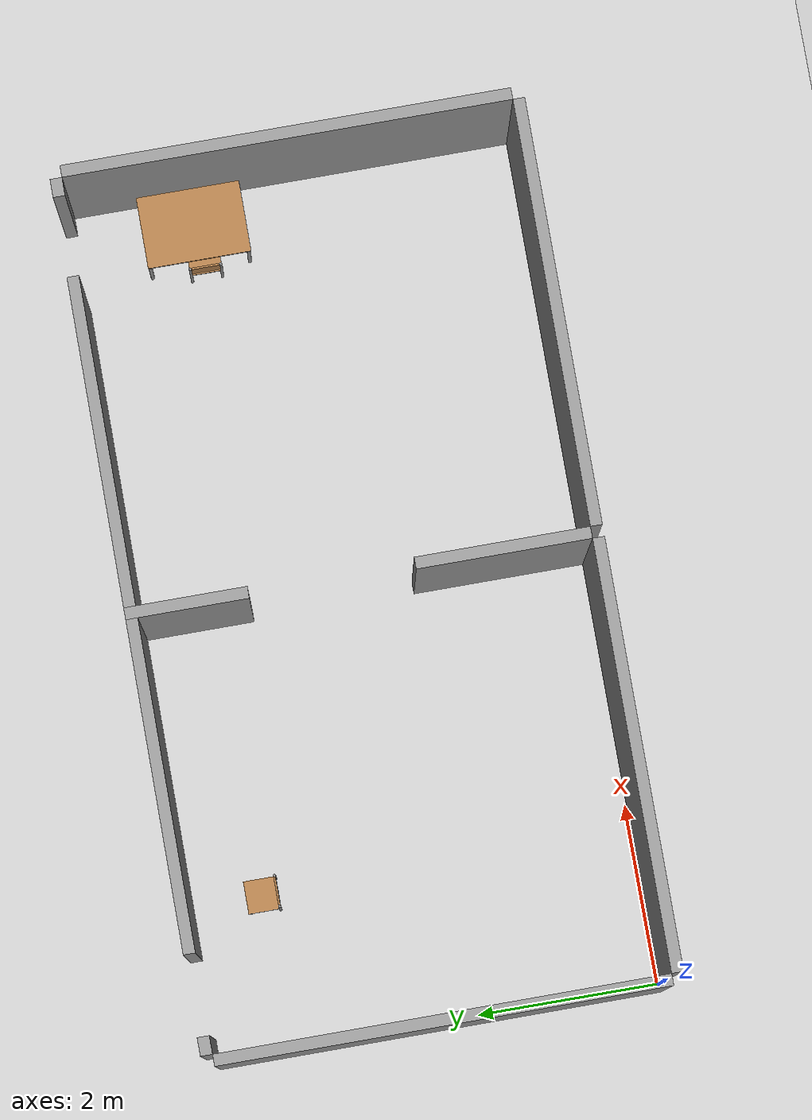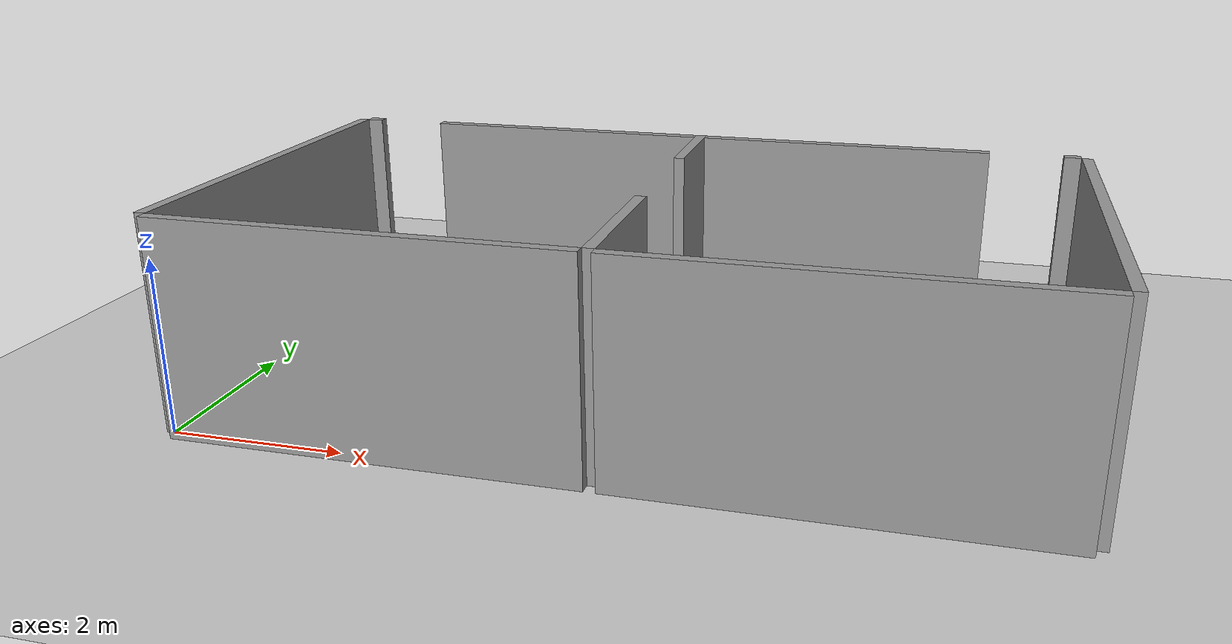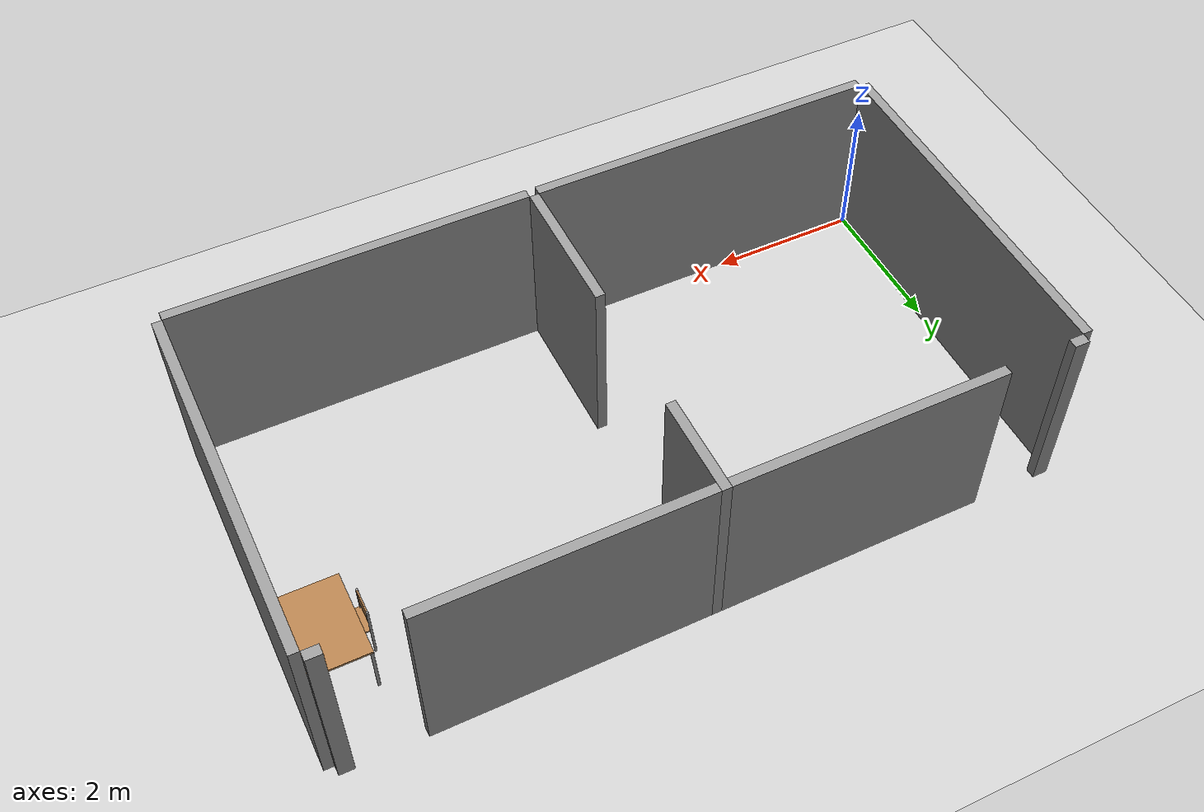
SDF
<sdf version="1.7">
 <world name="default">
  <model name="ground_plane">
   <static>1</static>
   <link name="link">
    <collision name="collision">
     <geometry><plane><normal>0 0 1</normal><size>100 100</size></plane></geometry>
     <surface>
      <contact><collide_bitmask>65535</collide_bitmask></contact>
      <friction><ode><mu>100</mu><mu2>50</mu2></ode></friction>
     </surface>
    </collision>
    <visual name="visual">
     <cast_shadows>0</cast_shadows>
     <geometry><plane><normal>0 0 1</normal><size>100 100</size></plane></geometry>
     <material>
      <script><uri>file://media/materials/scripts/gazebo.material</uri><name>Gazebo/Grey</name></script>
     </material>
    </visual>
   </link>
  </model>
  <model name="wall">
   <link name="Wall_0">
    <pose>-2.51458 2.40421 0 0 0 -1.5708</pose>
    <visual name="Wall_0_Visual">
     <pose>0 0 1.25 0 -0 0</pose>
     <geometry><box><size>4.68 0.13 2.5</size></box></geometry>
     <material>
      <script><uri>file://media/materials/scripts/gazebo.material</uri><name>Gazebo/Grey</name></script>
      <ambient>1 1 1 1</ambient>
      <shader type="pixel"/>
     </material>
     <meta><layer>0</layer></meta>
    </visual>
    <collision name="Wall_0_Collision">
     <pose>0 0 1.25 0 -0 0</pose>
     <geometry><box><size>4.68 0.13 2.5</size></box></geometry>
     <surface>
      <friction>
       <ode><mu>1</mu><mu2>1</mu2><fdir1>0 0 0</fdir1><slip1>0</slip1><slip2>0</slip2></ode>
       <torsional>
        <coefficient>1</coefficient>
        <patch_radius>0</patch_radius>
        <surface_radius>0</surface_radius>
        <use_patch_radius>1</use_patch_radius>
        <ode><slip>0</slip></ode>
       </torsional>
      </friction>
      <bounce><restitution_coefficient>0</restitution_coefficient><threshold>1e+06</threshold></bounce>
      <contact>
       <collide_without_contact>0</collide_without_contact>
       <collide_without_contact_bitmask>1</collide_without_contact_bitmask>
       <collide_bitmask>1</collide_bitmask>
       <ode>
        <soft_cfm>0</soft_cfm>
        <soft_erp>0.2</soft_erp>
        <kp>1e+13</kp>
        <kd>1</kd>
        <max_vel>0.01</max_vel>
        <min_depth>0</min_depth>
       </ode>
       <bullet>
        <split_impulse>1</split_impulse>
        <split_impulse_penetration_threshold>-0.01</split_impulse_penetration_threshold>
        <soft_cfm>0</soft_cfm>
        <soft_erp>0.2</soft_erp>
        <kp>1e+13</kp>
        <kd>1</kd>
       </bullet>
      </contact>
     </surface>
    </collision>
   </link>
   <link name="Wall_11">
    <pose>-0.000844 -4.80859 0 0 -0 0</pose>
    <visual name="Wall_11_Visual">
     <pose>0 0 1.25 0 -0 0</pose>
     <geometry><box><size>4.9 0.13 2.5</size></box></geometry>
     <material>
      <script><uri>file://media/materials/scripts/gazebo.material</uri><name>Gazebo/Grey</name></script>
      <ambient>1 1 1 1</ambient>
      <shader type="pixel"/>
     </material>
     <meta><layer>0</layer></meta>
    </visual>
    <collision name="Wall_11_Collision">
     <pose>0 0 1.25 0 -0 0</pose>
     <geometry><box><size>4.9 0.13 2.5</size></box></geometry>
     <surface>
      <friction>
       <ode><mu>1</mu><mu2>1</mu2><fdir1>0 0 0</fdir1><slip1>0</slip1><slip2>0</slip2></ode>
       <torsional>
        <coefficient>1</coefficient>
        <patch_radius>0</patch_radius>
        <surface_radius>0</surface_radius>
        <use_patch_radius>1</use_patch_radius>
        <ode><slip>0</slip></ode>
       </torsional>
      </friction>
      <bounce><restitution_coefficient>0</restitution_coefficient><threshold>1e+06</threshold></bounce>
      <contact>
       <collide_without_contact>0</collide_without_contact>
       <collide_without_contact_bitmask>1</collide_without_contact_bitmask>
       <collide_bitmask>1</collide_bitmask>
       <ode>
        <soft_cfm>0</soft_cfm>
        <soft_erp>0.2</soft_erp>
        <kp>1e+13</kp>
        <kd>1</kd>
        <max_vel>0.01</max_vel>
        <min_depth>0</min_depth>
       </ode>
       <bullet>
        <split_impulse>1</split_impulse>
        <split_impulse_penetration_threshold>-0.01</split_impulse_penetration_threshold>
        <soft_cfm>0</soft_cfm>
        <soft_erp>0.2</soft_erp>
        <kp>1e+13</kp>
        <kd>1</kd>
       </bullet>
      </contact>
     </surface>
    </collision>
   </link>
   <link name="Wall_15">
    <pose>2.51323 -4.64302 0 0 0 -1.5708</pose>
    <visual name="Wall_15_Visual">
     <pose>0 0 1.25 0 -0 0</pose>
     <geometry><box><size>0.2 0.13 2.5</size></box></geometry>
     <material>
      <script><uri>file://media/materials/scripts/gazebo.material</uri><name>Gazebo/Grey</name></script>
      <ambient>1 1 1 1</ambient>
      <shader type="pixel"/>
     </material>
     <meta><layer>0</layer></meta>
    </visual>
    <collision name="Wall_15_Collision">
     <pose>0 0 1.25 0 -0 0</pose>
     <geometry><box><size>0.2 0.13 2.5</size></box></geometry>
     <surface>
      <friction>
       <ode><mu>1</mu><mu2>1</mu2><fdir1>0 0 0</fdir1><slip1>0</slip1><slip2>0</slip2></ode>
       <torsional>
        <coefficient>1</coefficient>
        <patch_radius>0</patch_radius>
        <surface_radius>0</surface_radius>
        <use_patch_radius>1</use_patch_radius>
        <ode><slip>0</slip></ode>
       </torsional>
      </friction>
      <bounce><restitution_coefficient>0</restitution_coefficient><threshold>1e+06</threshold></bounce>
      <contact>
       <collide_without_contact>0</collide_without_contact>
       <collide_without_contact_bitmask>1</collide_without_contact_bitmask>
       <collide_bitmask>1</collide_bitmask>
       <ode>
        <soft_cfm>0</soft_cfm>
        <soft_erp>0.2</soft_erp>
        <kp>1e+13</kp>
        <kd>1</kd>
        <max_vel>0.01</max_vel>
        <min_depth>0</min_depth>
       </ode>
       <bullet>
        <split_impulse>1</split_impulse>
        <split_impulse_penetration_threshold>-0.01</split_impulse_penetration_threshold>
        <soft_cfm>0</soft_cfm>
        <soft_erp>0.2</soft_erp>
        <kp>1e+13</kp>
        <kd>1</kd>
       </bullet>
      </contact>
     </surface>
    </collision>
   </link>
   <link name="Wall_17">
    <pose>2.5147 4.64359 0 0 0 -1.5708</pose>
    <visual name="Wall_17_Visual">
     <pose>0 0 1.25 0 -0 0</pose>
     <geometry><box><size>0.2 0.13 2.5</size></box></geometry>
     <material>
      <script><uri>file://media/materials/scripts/gazebo.material</uri><name>Gazebo/Grey</name></script>
      <ambient>1 1 1 1</ambient>
      <shader type="pixel"/>
     </material>
     <meta><layer>0</layer></meta>
    </visual>
    <collision name="Wall_17_Collision">
     <pose>0 0 1.25 0 -0 0</pose>
     <geometry><box><size>0.2 0.13 2.5</size></box></geometry>
     <surface>
      <friction>
       <ode><mu>1</mu><mu2>1</mu2><fdir1>0 0 0</fdir1><slip1>0</slip1><slip2>0</slip2></ode>
       <torsional>
        <coefficient>1</coefficient>
        <patch_radius>0</patch_radius>
        <surface_radius>0</surface_radius>
        <use_patch_radius>1</use_patch_radius>
        <ode><slip>0</slip></ode>
       </torsional>
      </friction>
      <bounce><restitution_coefficient>0</restitution_coefficient><threshold>1e+06</threshold></bounce>
      <contact>
       <collide_without_contact>0</collide_without_contact>
       <collide_without_contact_bitmask>1</collide_without_contact_bitmask>
       <collide_bitmask>1</collide_bitmask>
       <ode>
        <soft_cfm>0</soft_cfm>
        <soft_erp>0.2</soft_erp>
        <kp>1e+13</kp>
        <kd>1</kd>
        <max_vel>0.01</max_vel>
        <min_depth>0</min_depth>
       </ode>
       <bullet>
        <split_impulse>1</split_impulse>
        <split_impulse_penetration_threshold>-0.01</split_impulse_penetration_threshold>
        <soft_cfm>0</soft_cfm>
        <soft_erp>0.2</soft_erp>
        <kp>1e+13</kp>
        <kd>1</kd>
       </bullet>
      </contact>
     </surface>
    </collision>
   </link>
   <link name="Wall_19">
    <pose>2.51201 -1.86467 0 0 0 -1.5708</pose>
    <visual name="Wall_19_Visual">
     <pose>0 0 1.25 0 -0 0</pose>
     <geometry><box><size>3.6 0.13 2.5</size></box></geometry>
     <material>
      <script><uri>file://media/materials/scripts/gazebo.material</uri><name>Gazebo/Grey</name></script>
      <ambient>1 1 1 1</ambient>
      <shader type="pixel"/>
     </material>
     <meta><layer>0</layer></meta>
    </visual>
    <collision name="Wall_19_Collision">
     <pose>0 0 1.25 0 -0 0</pose>
     <geometry><box><size>3.6 0.13 2.5</size></box></geometry>
     <surface>
      <friction>
       <ode><mu>1</mu><mu2>1</mu2><fdir1>0 0 0</fdir1><slip1>0</slip1><slip2>0</slip2></ode>
       <torsional>
        <coefficient>1</coefficient>
        <patch_radius>0</patch_radius>
        <surface_radius>0</surface_radius>
        <use_patch_radius>1</use_patch_radius>
        <ode><slip>0</slip></ode>
       </torsional>
      </friction>
      <bounce><restitution_coefficient>0</restitution_coefficient><threshold>1e+06</threshold></bounce>
      <contact>
       <collide_without_contact>0</collide_without_contact>
       <collide_without_contact_bitmask>1</collide_without_contact_bitmask>
       <collide_bitmask>1</collide_bitmask>
       <ode>
        <soft_cfm>0</soft_cfm>
        <soft_erp>0.2</soft_erp>
        <kp>1e+13</kp>
        <kd>1</kd>
        <max_vel>0.01</max_vel>
        <min_depth>0</min_depth>
       </ode>
       <bullet>
        <split_impulse>1</split_impulse>
        <split_impulse_penetration_threshold>-0.01</split_impulse_penetration_threshold>
        <soft_cfm>0</soft_cfm>
        <soft_erp>0.2</soft_erp>
        <kp>1e+13</kp>
        <kd>1</kd>
       </bullet>
      </contact>
     </surface>
    </collision>
   </link>
   <link name="Wall_21">
    <pose>1.91206 -0.000123 0 0 -0 0</pose>
    <inertial>
     <mass>1</mass>
     <inertia><ixx>1</ixx><ixy>0</ixy><ixz>0</ixz><iyy>1</iyy><iyz>0</iyz><izz>1</izz></inertia>
    </inertial>
    <visual name="Wall_21_Visual">
     <pose>0 0 1.25 0 -0 0</pose>
     <geometry><box><size>1.33 0.13 2.5</size></box></geometry>
     <material>
      <script><uri>file://media/materials/scripts/gazebo.material</uri><name>Gazebo/Grey</name></script>
      <ambient>1 1 1 1</ambient>
      <shader type="pixel"><normal_map>__default__</normal_map></shader>
      <diffuse>0.7 0.7 0.7 1</diffuse>
      <specular>0.01 0.01 0.01 1</specular>
      <emissive>0 0 0 1</emissive>
     </material>
     <meta><layer>0</layer></meta>
    </visual>
    <collision name="Wall_21_Collision">
     <pose>0 0 1.25 0 -0 0</pose>
     <geometry><box><size>1.33 0.13 2.5</size></box></geometry>
     <surface>
      <friction>
       <ode><mu>1</mu><mu2>1</mu2><fdir1>0 0 0</fdir1><slip1>0</slip1><slip2>0</slip2></ode>
       <torsional>
        <coefficient>1</coefficient>
        <patch_radius>0</patch_radius>
        <surface_radius>0</surface_radius>
        <use_patch_radius>1</use_patch_radius>
        <ode><slip>0</slip></ode>
       </torsional>
      </friction>
      <bounce><restitution_coefficient>0</restitution_coefficient><threshold>1e+06</threshold></bounce>
      <contact>
       <collide_without_contact>0</collide_without_contact>
       <collide_without_contact_bitmask>1</collide_without_contact_bitmask>
       <collide_bitmask>1</collide_bitmask>
       <ode>
        <soft_cfm>0</soft_cfm>
        <soft_erp>0.2</soft_erp>
        <kp>1e+13</kp>
        <kd>1</kd>
        <max_vel>0.01</max_vel>
        <min_depth>0</min_depth>
       </ode>
       <bullet>
        <split_impulse>1</split_impulse>
        <split_impulse_penetration_threshold>-0.01</split_impulse_penetration_threshold>
        <soft_cfm>0</soft_cfm>
        <soft_erp>0.2</soft_erp>
        <kp>1e+13</kp>
        <kd>1</kd>
       </bullet>
      </contact>
     </surface>
    </collision>
   </link>
   <link name="Wall_23">
    <pose>2.51167 1.86479 0 0 0 -1.5708</pose>
    <visual name="Wall_23_Visual">
     <pose>0 0 1.25 0 -0 0</pose>
     <geometry><box><size>3.6 0.13 2.5</size></box></geometry>
     <material>
      <script><uri>file://media/materials/scripts/gazebo.material</uri><name>Gazebo/Grey</name></script>
      <ambient>1 1 1 1</ambient>
      <shader type="pixel"/>
     </material>
     <meta><layer>0</layer></meta>
    </visual>
    <collision name="Wall_23_Collision">
     <pose>0 0 1.25 0 -0 0</pose>
     <geometry><box><size>3.6 0.13 2.5</size></box></geometry>
     <surface>
      <friction>
       <ode><mu>1</mu><mu2>1</mu2><fdir1>0 0 0</fdir1><slip1>0</slip1><slip2>0</slip2></ode>
       <torsional>
        <coefficient>1</coefficient>
        <patch_radius>0</patch_radius>
        <surface_radius>0</surface_radius>
        <use_patch_radius>1</use_patch_radius>
        <ode><slip>0</slip></ode>
       </torsional>
      </friction>
      <bounce><restitution_coefficient>0</restitution_coefficient><threshold>1e+06</threshold></bounce>
      <contact>
       <collide_without_contact>0</collide_without_contact>
       <collide_without_contact_bitmask>1</collide_without_contact_bitmask>
       <collide_bitmask>1</collide_bitmask>
       <ode>
        <soft_cfm>0</soft_cfm>
        <soft_erp>0.2</soft_erp>
        <kp>1e+13</kp>
        <kd>1</kd>
        <max_vel>0.01</max_vel>
        <min_depth>0</min_depth>
       </ode>
       <bullet>
        <split_impulse>1</split_impulse>
        <split_impulse_penetration_threshold>-0.01</split_impulse_penetration_threshold>
        <soft_cfm>0</soft_cfm>
        <soft_erp>0.2</soft_erp>
        <kp>1e+13</kp>
        <kd>1</kd>
       </bullet>
      </contact>
     </surface>
    </collision>
   </link>
   <link name="Wall_3">
    <pose>-0.000301 4.80859 0 0 -0 3.14159</pose>
    <visual name="Wall_3_Visual">
     <pose>0 0 1.25 0 -0 0</pose>
     <geometry><box><size>4.9 0.13 2.5</size></box></geometry>
     <material>
      <script><uri>file://media/materials/scripts/gazebo.material</uri><name>Gazebo/Grey</name></script>
      <ambient>1 1 1 1</ambient>
      <shader type="pixel"/>
     </material>
     <meta><layer>0</layer></meta>
    </visual>
    <collision name="Wall_3_Collision">
     <pose>0 0 1.25 0 -0 0</pose>
     <geometry><box><size>4.9 0.13 2.5</size></box></geometry>
     <surface>
      <friction>
       <ode><mu>1</mu><mu2>1</mu2><fdir1>0 0 0</fdir1><slip1>0</slip1><slip2>0</slip2></ode>
       <torsional>
        <coefficient>1</coefficient>
        <patch_radius>0</patch_radius>
        <surface_radius>0</surface_radius>
        <use_patch_radius>1</use_patch_radius>
        <ode><slip>0</slip></ode>
       </torsional>
      </friction>
      <bounce><restitution_coefficient>0</restitution_coefficient><threshold>1e+06</threshold></bounce>
      <contact>
       <collide_without_contact>0</collide_without_contact>
       <collide_without_contact_bitmask>1</collide_without_contact_bitmask>
       <collide_bitmask>1</collide_bitmask>
       <ode>
        <soft_cfm>0</soft_cfm>
        <soft_erp>0.2</soft_erp>
        <kp>1e+13</kp>
        <kd>1</kd>
        <max_vel>0.01</max_vel>
        <min_depth>0</min_depth>
       </ode>
       <bullet>
        <split_impulse>1</split_impulse>
        <split_impulse_penetration_threshold>-0.01</split_impulse_penetration_threshold>
        <soft_cfm>0</soft_cfm>
        <soft_erp>0.2</soft_erp>
        <kp>1e+13</kp>
        <kd>1</kd>
       </bullet>
      </contact>
     </surface>
    </collision>
   </link>
   <link name="Wall_7">
    <pose>-1.49943 -0.000182 0 0 -0 0</pose>
    <visual name="Wall_7_Visual">
     <pose>0 0 1.25 0 -0 0</pose>
     <geometry><box><size>1.9 0.13 2.5</size></box></geometry>
     <material>
      <script><uri>file://media/materials/scripts/gazebo.material</uri><name>Gazebo/Grey</name></script>
      <ambient>1 1 1 1</ambient>
      <shader type="pixel"/>
     </material>
     <meta><layer>0</layer></meta>
    </visual>
    <collision name="Wall_7_Collision">
     <pose>0 0 1.25 0 -0 0</pose>
     <geometry><box><size>1.9 0.13 2.5</size></box></geometry>
     <surface>
      <friction>
       <ode><mu>1</mu><mu2>1</mu2><fdir1>0 0 0</fdir1><slip1>0</slip1><slip2>0</slip2></ode>
       <torsional>
        <coefficient>1</coefficient>
        <patch_radius>0</patch_radius>
        <surface_radius>0</surface_radius>
        <use_patch_radius>1</use_patch_radius>
        <ode><slip>0</slip></ode>
       </torsional>
      </friction>
      <bounce><restitution_coefficient>0</restitution_coefficient><threshold>1e+06</threshold></bounce>
      <contact>
       <collide_without_contact>0</collide_without_contact>
       <collide_without_contact_bitmask>1</collide_without_contact_bitmask>
       <collide_bitmask>1</collide_bitmask>
       <ode>
        <soft_cfm>0</soft_cfm>
        <soft_erp>0.2</soft_erp>
        <kp>1e+13</kp>
        <kd>1</kd>
        <max_vel>0.01</max_vel>
        <min_depth>0</min_depth>
       </ode>
       <bullet>
        <split_impulse>1</split_impulse>
        <split_impulse_penetration_threshold>-0.01</split_impulse_penetration_threshold>
        <soft_cfm>0</soft_cfm>
        <soft_erp>0.2</soft_erp>
        <kp>1e+13</kp>
        <kd>1</kd>
       </bullet>
      </contact>
     </surface>
    </collision>
   </link>
   <link name="Wall_9">
    <pose>-2.5147 -2.40399 0 0 0 -1.5708</pose>
    <visual name="Wall_9_Visual">
     <pose>0 0 1.25 0 -0 0</pose>
     <geometry><box><size>4.68 0.13 2.5</size></box></geometry>
     <material>
      <script><uri>file://media/materials/scripts/gazebo.material</uri><name>Gazebo/Grey</name></script>
      <ambient>1 1 1 1</ambient>
      <shader type="pixel"/>
     </material>
     <meta><layer>0</layer></meta>
    </visual>
    <collision name="Wall_9_Collision">
     <pose>0 0 1.25 0 -0 0</pose>
     <geometry><box><size>4.68 0.13 2.5</size></box></geometry>
     <surface>
      <friction>
       <ode><mu>1</mu><mu2>1</mu2><fdir1>0 0 0</fdir1><slip1>0</slip1><slip2>0</slip2></ode>
       <torsional>
        <coefficient>1</coefficient>
        <patch_radius>0</patch_radius>
        <surface_radius>0</surface_radius>
        <use_patch_radius>1</use_patch_radius>
        <ode><slip>0</slip></ode>
       </torsional>
      </friction>
      <bounce><restitution_coefficient>0</restitution_coefficient><threshold>1e+06</threshold></bounce>
      <contact>
       <collide_without_contact>0</collide_without_contact>
       <collide_without_contact_bitmask>1</collide_without_contact_bitmask>
       <collide_bitmask>1</collide_bitmask>
       <ode>
        <soft_cfm>0</soft_cfm>
        <soft_erp>0.2</soft_erp>
        <kp>1e+13</kp>
        <kd>1</kd>
        <max_vel>0.01</max_vel>
        <min_depth>0</min_depth>
       </ode>
       <bullet>
        <split_impulse>1</split_impulse>
        <split_impulse_penetration_threshold>-0.01</split_impulse_penetration_threshold>
        <soft_cfm>0</soft_cfm>
        <soft_erp>0.2</soft_erp>
        <kp>1e+13</kp>
        <kd>1</kd>
       </bullet>
      </contact>
     </surface>
    </collision>
   </link>
   <static>1</static>
   <pose>4.78457 2.43427 0 0 -0 1.5708</pose>
  </model>
  <model name="table_mod_clone_clone_1_clone_clone">
   <link name="link">
    <inertial>
     <mass>1</mass>
     <inertia><ixx>1</ixx><ixy>0</ixy><ixz>0</ixz><iyy>1</iyy><iyz>0</iyz><izz>1</izz></inertia>
    </inertial>
    <visual name="visual1">
     <pose>0 0 0.87 0 -0 0</pose>
     <geometry><box><size>1.15 0.8 0.03</size></box></geometry>
     <material>
      <script><uri>file://media/materials/scripts/gazebo.material</uri><name>Gazebo/Wood</name></script>
      <shader type="pixel"><normal_map>__default__</normal_map></shader>
      <ambient>1 1 1 1</ambient>
      <diffuse>1 1 1 1</diffuse>
      <specular>0.2 0.2 0.2 1</specular>
      <emissive>0 0 0 1</emissive>
     </material>
    </visual>
    <visual name="back_right_leg">
     <pose>-0.55 -0.38 0.5 0 -0 0</pose>
     <geometry><cylinder><radius>0.02</radius><length>0.75</length></cylinder></geometry>
     <material>
      <script><uri>file://media/materials/scripts/gazebo.material</uri><name>Gazebo/Grey</name></script>
      <shader type="pixel"><normal_map>__default__</normal_map></shader>
      <ambient>0.3 0.3 0.3 1</ambient>
      <diffuse>0.7 0.7 0.7 1</diffuse>
      <specular>0.01 0.01 0.01 1</specular>
      <emissive>0 0 0 1</emissive>
     </material>
    </visual>
    <visual name="front_right_leg">
     <pose>0.55 -0.38 0.5 0 -0 0</pose>
     <geometry><cylinder><radius>0.02</radius><length>0.75</length></cylinder></geometry>
     <material>
      <script><uri>file://media/materials/scripts/gazebo.material</uri><name>Gazebo/Grey</name></script>
      <shader type="pixel"><normal_map>__default__</normal_map></shader>
      <ambient>0.3 0.3 0.3 1</ambient>
      <diffuse>0.7 0.7 0.7 1</diffuse>
      <specular>0.01 0.01 0.01 1</specular>
      <emissive>0 0 0 1</emissive>
     </material>
    </visual>
    <visual name="back_left_leg">
     <pose>-0.55 0.38 0.5 0 -0 0</pose>
     <geometry><cylinder><radius>0.02</radius><length>0.75</length></cylinder></geometry>
     <material>
      <script><uri>file://media/materials/scripts/gazebo.material</uri><name>Gazebo/Grey</name></script>
      <shader type="pixel"><normal_map>__default__</normal_map></shader>
      <ambient>0.3 0.3 0.3 1</ambient>
      <diffuse>0.7 0.7 0.7 1</diffuse>
      <specular>0.01 0.01 0.01 1</specular>
      <emissive>0 0 0 1</emissive>
     </material>
    </visual>
    <visual name="front_left_leg">
     <pose>0.55 0.38 0.5 0 -0 0</pose>
     <geometry><cylinder><radius>0.02</radius><length>0.75</length></cylinder></geometry>
     <material>
      <script><uri>file://media/materials/scripts/gazebo.material</uri><name>Gazebo/Grey</name></script>
      <shader type="pixel"><normal_map>__default__</normal_map></shader>
      <ambient>0.3 0.3 0.3 1</ambient>
      <diffuse>0.7 0.7 0.7 1</diffuse>
      <specular>0.01 0.01 0.01 1</specular>
      <emissive>0 0 0 1</emissive>
     </material>
    </visual>
    <collision name="surface">
     <pose>0 0 0.87 0 -0 0</pose>
     <geometry><box><size>1.15 0.8 0.03</size></box></geometry>
     <surface>
      <friction>
       <ode><mu>0.6</mu><mu2>0.6</mu2><fdir1>0 0 0</fdir1><slip1>0</slip1><slip2>0</slip2></ode>
       <torsional>
        <coefficient>1</coefficient>
        <patch_radius>0</patch_radius>
        <surface_radius>0</surface_radius>
        <use_patch_radius>1</use_patch_radius>
        <ode><slip>0</slip></ode>
       </torsional>
      </friction>
      <bounce><restitution_coefficient>0</restitution_coefficient><threshold>1e+06</threshold></bounce>
      <contact>
       <collide_without_contact>0</collide_without_contact>
       <collide_without_contact_bitmask>1</collide_without_contact_bitmask>
       <collide_bitmask>1</collide_bitmask>
       <ode>
        <soft_cfm>0</soft_cfm>
        <soft_erp>0.2</soft_erp>
        <kp>1e+13</kp>
        <kd>1</kd>
        <max_vel>0.01</max_vel>
        <min_depth>0</min_depth>
       </ode>
       <bullet>
        <split_impulse>1</split_impulse>
        <split_impulse_penetration_threshold>-0.01</split_impulse_penetration_threshold>
        <soft_cfm>0</soft_cfm>
        <soft_erp>0.2</soft_erp>
        <kp>1e+13</kp>
        <kd>1</kd>
       </bullet>
      </contact>
     </surface>
    </collision>
    <collision name="back_right_leg">
     <pose>-0.55 -0.38 0.5 0 -0 0</pose>
     <geometry><cylinder><radius>0.02</radius><length>0.75</length></cylinder></geometry>
     <surface>
      <friction>
       <ode><mu>1</mu><mu2>1</mu2><fdir1>0 0 0</fdir1><slip1>0</slip1><slip2>0</slip2></ode>
       <torsional>
        <coefficient>1</coefficient>
        <patch_radius>0</patch_radius>
        <surface_radius>0</surface_radius>
        <use_patch_radius>1</use_patch_radius>
        <ode><slip>0</slip></ode>
       </torsional>
      </friction>
      <bounce><restitution_coefficient>0</restitution_coefficient><threshold>1e+06</threshold></bounce>
      <contact>
       <collide_without_contact>0</collide_without_contact>
       <collide_without_contact_bitmask>1</collide_without_contact_bitmask>
       <collide_bitmask>1</collide_bitmask>
       <ode>
        <soft_cfm>0</soft_cfm>
        <soft_erp>0.2</soft_erp>
        <kp>1e+13</kp>
        <kd>1</kd>
        <max_vel>0.01</max_vel>
        <min_depth>0</min_depth>
       </ode>
       <bullet>
        <split_impulse>1</split_impulse>
        <split_impulse_penetration_threshold>-0.01</split_impulse_penetration_threshold>
        <soft_cfm>0</soft_cfm>
        <soft_erp>0.2</soft_erp>
        <kp>1e+13</kp>
        <kd>1</kd>
       </bullet>
      </contact>
     </surface>
    </collision>
    <collision name="back_left_leg">
     <pose>-0.55 0.38 0.5 0 -0 0</pose>
     <geometry><cylinder><radius>0.02</radius><length>0.75</length></cylinder></geometry>
     <surface>
      <friction>
       <ode><mu>1</mu><mu2>1</mu2><fdir1>0 0 0</fdir1><slip1>0</slip1><slip2>0</slip2></ode>
       <torsional>
        <coefficient>1</coefficient>
        <patch_radius>0</patch_radius>
        <surface_radius>0</surface_radius>
        <use_patch_radius>1</use_patch_radius>
        <ode><slip>0</slip></ode>
       </torsional>
      </friction>
      <bounce><restitution_coefficient>0</restitution_coefficient><threshold>1e+06</threshold></bounce>
      <contact>
       <collide_without_contact>0</collide_without_contact>
       <collide_without_contact_bitmask>1</collide_without_contact_bitmask>
       <collide_bitmask>1</collide_bitmask>
       <ode>
        <soft_cfm>0</soft_cfm>
        <soft_erp>0.2</soft_erp>
        <kp>1e+13</kp>
        <kd>1</kd>
        <max_vel>0.01</max_vel>
        <min_depth>0</min_depth>
       </ode>
       <bullet>
        <split_impulse>1</split_impulse>
        <split_impulse_penetration_threshold>-0.01</split_impulse_penetration_threshold>
        <soft_cfm>0</soft_cfm>
        <soft_erp>0.2</soft_erp>
        <kp>1e+13</kp>
        <kd>1</kd>
       </bullet>
      </contact>
     </surface>
    </collision>
    <collision name="front_left_leg">
     <pose>0.55 0.38 0.5 0 -0 0</pose>
     <geometry><cylinder><radius>0.02</radius><length>0.75</length></cylinder></geometry>
     <surface>
      <friction>
       <ode><mu>1</mu><mu2>1</mu2><fdir1>0 0 0</fdir1><slip1>0</slip1><slip2>0</slip2></ode>
       <torsional>
        <coefficient>1</coefficient>
        <patch_radius>0</patch_radius>
        <surface_radius>0</surface_radius>
        <use_patch_radius>1</use_patch_radius>
        <ode><slip>0</slip></ode>
       </torsional>
      </friction>
      <bounce><restitution_coefficient>0</restitution_coefficient><threshold>1e+06</threshold></bounce>
      <contact>
       <collide_without_contact>0</collide_without_contact>
       <collide_without_contact_bitmask>1</collide_without_contact_bitmask>
       <collide_bitmask>1</collide_bitmask>
       <ode>
        <soft_cfm>0</soft_cfm>
        <soft_erp>0.2</soft_erp>
        <kp>1e+13</kp>
        <kd>1</kd>
        <max_vel>0.01</max_vel>
        <min_depth>0</min_depth>
       </ode>
       <bullet>
        <split_impulse>1</split_impulse>
        <split_impulse_penetration_threshold>-0.01</split_impulse_penetration_threshold>
        <soft_cfm>0</soft_cfm>
        <soft_erp>0.2</soft_erp>
        <kp>1e+13</kp>
        <kd>1</kd>
       </bullet>
      </contact>
     </surface>
    </collision>
    <collision name="front_right_leg">
     <pose>0.55 -0.38 0.5 0 -0 0</pose>
     <geometry><cylinder><radius>0.02</radius><length>0.75</length></cylinder></geometry>
     <surface>
      <friction>
       <ode><mu>1</mu><mu2>1</mu2><fdir1>0 0 0</fdir1><slip1>0</slip1><slip2>0</slip2></ode>
       <torsional>
        <coefficient>1</coefficient>
        <patch_radius>0</patch_radius>
        <surface_radius>0</surface_radius>
        <use_patch_radius>1</use_patch_radius>
        <ode><slip>0</slip></ode>
       </torsional>
      </friction>
      <bounce><restitution_coefficient>0</restitution_coefficient><threshold>1e+06</threshold></bounce>
      <contact>
       <collide_without_contact>0</collide_without_contact>
       <collide_without_contact_bitmask>1</collide_without_contact_bitmask>
       <collide_bitmask>1</collide_bitmask>
       <ode>
        <soft_cfm>0</soft_cfm>
        <soft_erp>0.2</soft_erp>
        <kp>1e+13</kp>
        <kd>1</kd>
        <max_vel>0.01</max_vel>
        <min_depth>0</min_depth>
       </ode>
       <bullet>
        <split_impulse>1</split_impulse>
        <split_impulse_penetration_threshold>-0.01</split_impulse_penetration_threshold>
        <soft_cfm>0</soft_cfm>
        <soft_erp>0.2</soft_erp>
        <kp>1e+13</kp>
        <kd>1</kd>
       </bullet>
      </contact>
     </surface>
    </collision>
   </link>
   <static>1</static>
   <pose>9.09874 3.58636 -0.134214 0 0 -1.5708</pose>
  </model>
  <model name="chair_mod_0_clone_2">
   <link name="link">
    <inertial>
     <mass>1</mass>
     <inertia><ixx>1</ixx><ixy>0</ixy><ixz>0</ixz><iyy>1</iyy><iyz>0</iyz><izz>1</izz></inertia>
    </inertial>
    <visual name="back_right_leg">
     <pose>-0.17 -0.17 0.42 0 -0 0</pose>
     <geometry><cylinder><radius>0.015</radius><length>0.84</length></cylinder></geometry>
     <material>
      <script><uri>file://media/materials/scripts/gazebo.material</uri><name>Gazebo/Grey</name></script>
      <shader type="pixel"><normal_map>__default__</normal_map></shader>
      <ambient>0.3 0.3 0.3 1</ambient>
      <diffuse>0.7 0.7 0.7 1</diffuse>
      <specular>0.01 0.01 0.01 1</specular>
      <emissive>0 0 0 1</emissive>
     </material>
    </visual>
    <visual name="back_left_leg">
     <pose>-0.15 0.15 0.23 0 -0 0</pose>
     <geometry><cylinder><radius>0.015</radius><length>0.46</length></cylinder></geometry>
     <material>
      <script><uri>file://media/materials/scripts/gazebo.material</uri><name>Gazebo/Grey</name></script>
      <shader type="pixel"><normal_map>__default__</normal_map></shader>
      <ambient>0.3 0.3 0.3 1</ambient>
      <diffuse>0.7 0.7 0.7 1</diffuse>
      <specular>0.01 0.01 0.01 1</specular>
      <emissive>0 0 0 1</emissive>
     </material>
    </visual>
    <visual name="visual1">
     <pose>0 0 0.46 0 -0 0</pose>
     <geometry><box><size>0.36 0.36 0.02</size></box></geometry>
     <material>
      <script><uri>file://media/materials/scripts/gazebo.material</uri><name>Gazebo/Wood</name></script>
      <shader type="pixel"><normal_map>__default__</normal_map></shader>
      <ambient>1 1 1 1</ambient>
      <diffuse>1 1 1 1</diffuse>
      <specular>0.2 0.2 0.2 1</specular>
      <emissive>0 0 0 1</emissive>
     </material>
    </visual>
    <visual name="ModelPreview_1::link::visual_5">
     <pose>0 -0.17 0.705 1.56 -0 0</pose>
     <geometry><box><size>0.36 0.26 0.02</size></box></geometry>
     <material>
      <script><uri>file://media/materials/scripts/gazebo.material</uri><name>Gazebo/Wood</name></script>
      <shader type="pixel"><normal_map>__default__</normal_map></shader>
      <ambient>1 1 1 1</ambient>
      <diffuse>1 1 1 1</diffuse>
      <specular>0.2 0.2 0.2 1</specular>
      <emissive>0 0 0 1</emissive>
     </material>
    </visual>
    <visual name="front_left_leg">
     <pose>0.15 0.15 0.23 0 -0 0</pose>
     <geometry><cylinder><radius>0.015</radius><length>0.46</length></cylinder></geometry>
     <material>
      <script><uri>file://media/materials/scripts/gazebo.material</uri><name>Gazebo/Grey</name></script>
      <shader type="pixel"><normal_map>__default__</normal_map></shader>
      <ambient>0.3 0.3 0.3 1</ambient>
      <diffuse>0.7 0.7 0.7 1</diffuse>
      <specular>0.01 0.01 0.01 1</specular>
      <emissive>0 0 0 1</emissive>
     </material>
    </visual>
    <visual name="front_right_leg">
     <pose>0.17 -0.17 0.42 0 -0 0</pose>
     <geometry><cylinder><radius>0.015</radius><length>0.84</length></cylinder></geometry>
     <material>
      <script><uri>file://media/materials/scripts/gazebo.material</uri><name>Gazebo/Grey</name></script>
      <shader type="pixel"><normal_map>__default__</normal_map></shader>
      <ambient>0.3 0.3 0.3 1</ambient>
      <diffuse>0.7 0.7 0.7 1</diffuse>
      <specular>0.01 0.01 0.01 1</specular>
      <emissive>0 0 0 1</emissive>
     </material>
    </visual>
    <collision name="front_right_leg">
     <pose>0.17 -0.17 0.42 0 -0 0</pose>
     <geometry><cylinder><radius>0.015</radius><length>0.84</length></cylinder></geometry>
     <surface>
      <friction>
       <ode><mu>1</mu><mu2>1</mu2><fdir1>0 0 0</fdir1><slip1>0</slip1><slip2>0</slip2></ode>
       <torsional>
        <coefficient>1</coefficient>
        <patch_radius>0</patch_radius>
        <surface_radius>0</surface_radius>
        <use_patch_radius>1</use_patch_radius>
        <ode><slip>0</slip></ode>
       </torsional>
      </friction>
      <bounce><restitution_coefficient>0</restitution_coefficient><threshold>1e+06</threshold></bounce>
      <contact>
       <collide_without_contact>0</collide_without_contact>
       <collide_without_contact_bitmask>1</collide_without_contact_bitmask>
       <collide_bitmask>1</collide_bitmask>
       <ode>
        <soft_cfm>0</soft_cfm>
        <soft_erp>0.2</soft_erp>
        <kp>1e+13</kp>
        <kd>1</kd>
        <max_vel>0.01</max_vel>
        <min_depth>0</min_depth>
       </ode>
       <bullet>
        <split_impulse>1</split_impulse>
        <split_impulse_penetration_threshold>-0.01</split_impulse_penetration_threshold>
        <soft_cfm>0</soft_cfm>
        <soft_erp>0.2</soft_erp>
        <kp>1e+13</kp>
        <kd>1</kd>
       </bullet>
      </contact>
     </surface>
    </collision>
    <collision name="back_right_leg">
     <pose>-0.17 -0.17 0.42 0 -0 0</pose>
     <geometry><cylinder><radius>0.015</radius><length>0.84</length></cylinder></geometry>
     <surface>
      <friction>
       <ode><mu>1</mu><mu2>1</mu2><fdir1>0 0 0</fdir1><slip1>0</slip1><slip2>0</slip2></ode>
       <torsional>
        <coefficient>1</coefficient>
        <patch_radius>0</patch_radius>
        <surface_radius>0</surface_radius>
        <use_patch_radius>1</use_patch_radius>
        <ode><slip>0</slip></ode>
       </torsional>
      </friction>
      <bounce><restitution_coefficient>0</restitution_coefficient><threshold>1e+06</threshold></bounce>
      <contact>
       <collide_without_contact>0</collide_without_contact>
       <collide_without_contact_bitmask>1</collide_without_contact_bitmask>
       <collide_bitmask>1</collide_bitmask>
       <ode>
        <soft_cfm>0</soft_cfm>
        <soft_erp>0.2</soft_erp>
        <kp>1e+13</kp>
        <kd>1</kd>
        <max_vel>0.01</max_vel>
        <min_depth>0</min_depth>
       </ode>
       <bullet>
        <split_impulse>1</split_impulse>
        <split_impulse_penetration_threshold>-0.01</split_impulse_penetration_threshold>
        <soft_cfm>0</soft_cfm>
        <soft_erp>0.2</soft_erp>
        <kp>1e+13</kp>
        <kd>1</kd>
       </bullet>
      </contact>
     </surface>
    </collision>
    <collision name="back_left_leg">
     <pose>-0.15 0.15 0.23 0 -0 0</pose>
     <geometry><cylinder><radius>0.015</radius><length>0.46</length></cylinder></geometry>
     <surface>
      <friction>
       <ode><mu>1</mu><mu2>1</mu2><fdir1>0 0 0</fdir1><slip1>0</slip1><slip2>0</slip2></ode>
       <torsional>
        <coefficient>1</coefficient>
        <patch_radius>0</patch_radius>
        <surface_radius>0</surface_radius>
        <use_patch_radius>1</use_patch_radius>
        <ode><slip>0</slip></ode>
       </torsional>
      </friction>
      <bounce><restitution_coefficient>0</restitution_coefficient><threshold>1e+06</threshold></bounce>
      <contact>
       <collide_without_contact>0</collide_without_contact>
       <collide_without_contact_bitmask>1</collide_without_contact_bitmask>
       <collide_bitmask>1</collide_bitmask>
       <ode>
        <soft_cfm>0</soft_cfm>
        <soft_erp>0.2</soft_erp>
        <kp>1e+13</kp>
        <kd>1</kd>
        <max_vel>0.01</max_vel>
        <min_depth>0</min_depth>
       </ode>
       <bullet>
        <split_impulse>1</split_impulse>
        <split_impulse_penetration_threshold>-0.01</split_impulse_penetration_threshold>
        <soft_cfm>0</soft_cfm>
        <soft_erp>0.2</soft_erp>
        <kp>1e+13</kp>
        <kd>1</kd>
       </bullet>
      </contact>
     </surface>
    </collision>
    <collision name="collision_6">
     <pose>0 -0.17 0.705 1.56 -0 0</pose>
     <geometry><box><size>0.36 0.26 0.03</size></box></geometry>
     <surface>
      <friction>
       <ode><mu>1</mu><mu2>1</mu2><fdir1>0 0 0</fdir1><slip1>0</slip1><slip2>0</slip2></ode>
       <torsional>
        <coefficient>1</coefficient>
        <patch_radius>0</patch_radius>
        <surface_radius>0</surface_radius>
        <use_patch_radius>1</use_patch_radius>
        <ode><slip>0</slip></ode>
       </torsional>
      </friction>
      <bounce><restitution_coefficient>0</restitution_coefficient><threshold>1e+06</threshold></bounce>
      <contact>
       <collide_without_contact>0</collide_without_contact>
       <collide_without_contact_bitmask>1</collide_without_contact_bitmask>
       <collide_bitmask>1</collide_bitmask>
       <ode>
        <soft_cfm>0</soft_cfm>
        <soft_erp>0.2</soft_erp>
        <kp>1e+13</kp>
        <kd>1</kd>
        <max_vel>0.01</max_vel>
        <min_depth>0</min_depth>
       </ode>
       <bullet>
        <split_impulse>1</split_impulse>
        <split_impulse_penetration_threshold>-0.01</split_impulse_penetration_threshold>
        <soft_cfm>0</soft_cfm>
        <soft_erp>0.2</soft_erp>
        <kp>1e+13</kp>
        <kd>1</kd>
       </bullet>
      </contact>
     </surface>
    </collision>
    <collision name="surface">
     <pose>0 0 0.46 0 -0 0</pose>
     <geometry><box><size>0.36 0.36 0.03</size></box></geometry>
     <surface>
      <friction>
       <ode><mu>0.6</mu><mu2>0.6</mu2><fdir1>0 0 0</fdir1><slip1>0</slip1><slip2>0</slip2></ode>
       <torsional>
        <coefficient>1</coefficient>
        <patch_radius>0</patch_radius>
        <surface_radius>0</surface_radius>
        <use_patch_radius>1</use_patch_radius>
        <ode><slip>0</slip></ode>
       </torsional>
      </friction>
      <bounce><restitution_coefficient>0</restitution_coefficient><threshold>1e+06</threshold></bounce>
      <contact>
       <collide_without_contact>0</collide_without_contact>
       <collide_without_contact_bitmask>1</collide_without_contact_bitmask>
       <collide_bitmask>1</collide_bitmask>
       <ode>
        <soft_cfm>0</soft_cfm>
        <soft_erp>0.2</soft_erp>
        <kp>1e+13</kp>
        <kd>1</kd>
        <max_vel>0.01</max_vel>
        <min_depth>0</min_depth>
       </ode>
       <bullet>
        <split_impulse>1</split_impulse>
        <split_impulse_penetration_threshold>-0.01</split_impulse_penetration_threshold>
        <soft_cfm>0</soft_cfm>
        <soft_erp>0.2</soft_erp>
        <kp>1e+13</kp>
        <kd>1</kd>
       </bullet>
      </contact>
     </surface>
    </collision>
    <collision name="front_left_leg">
     <pose>0.15 0.15 0.23 0 -0 0</pose>
     <geometry><cylinder><radius>0.015</radius><length>0.46</length></cylinder></geometry>
     <surface>
      <friction>
       <ode><mu>1</mu><mu2>1</mu2><fdir1>0 0 0</fdir1><slip1>0</slip1><slip2>0</slip2></ode>
       <torsional>
        <coefficient>1</coefficient>
        <patch_radius>0</patch_radius>
        <surface_radius>0</surface_radius>
        <use_patch_radius>1</use_patch_radius>
        <ode><slip>0</slip></ode>
       </torsional>
      </friction>
      <bounce><restitution_coefficient>0</restitution_coefficient><threshold>1e+06</threshold></bounce>
      <contact>
       <collide_without_contact>0</collide_without_contact>
       <collide_without_contact_bitmask>1</collide_without_contact_bitmask>
       <collide_bitmask>1</collide_bitmask>
       <ode>
        <soft_cfm>0</soft_cfm>
        <soft_erp>0.2</soft_erp>
        <kp>1e+13</kp>
        <kd>1</kd>
        <max_vel>0.01</max_vel>
        <min_depth>0</min_depth>
       </ode>
       <bullet>
        <split_impulse>1</split_impulse>
        <split_impulse_penetration_threshold>-0.01</split_impulse_penetration_threshold>
        <soft_cfm>0</soft_cfm>
        <soft_erp>0.2</soft_erp>
        <kp>1e+13</kp>
        <kd>1</kd>
       </bullet>
      </contact>
     </surface>
    </collision>
   </link>
   <static>1</static>
   <pose>1.69549 4.10748 0 0 -0 4e-06</pose>
  </model>
  <model name="chair_mod_0_clone_2_clone_1_clone_1_clone_0">
   <link name="link">
    <inertial>
     <mass>1</mass>
     <inertia><ixx>1</ixx><ixy>0</ixy><ixz>0</ixz><iyy>1</iyy><iyz>0</iyz><izz>1</izz></inertia>
    </inertial>
    <visual name="back_right_leg">
     <pose>-0.17 -0.17 0.42 0 -0 0</pose>
     <geometry><cylinder><radius>0.015</radius><length>0.84</length></cylinder></geometry>
     <material>
      <script><uri>file://media/materials/scripts/gazebo.material</uri><name>Gazebo/Grey</name></script>
      <shader type="pixel"><normal_map>__default__</normal_map></shader>
      <ambient>0.3 0.3 0.3 1</ambient>
      <diffuse>0.7 0.7 0.7 1</diffuse>
      <specular>0.01 0.01 0.01 1</specular>
      <emissive>0 0 0 1</emissive>
     </material>
    </visual>
    <visual name="back_left_leg">
     <pose>-0.15 0.15 0.23 0 -0 0</pose>
     <geometry><cylinder><radius>0.015</radius><length>0.46</length></cylinder></geometry>
     <material>
      <script><uri>file://media/materials/scripts/gazebo.material</uri><name>Gazebo/Grey</name></script>
      <shader type="pixel"><normal_map>__default__</normal_map></shader>
      <ambient>0.3 0.3 0.3 1</ambient>
      <diffuse>0.7 0.7 0.7 1</diffuse>
      <specular>0.01 0.01 0.01 1</specular>
      <emissive>0 0 0 1</emissive>
     </material>
    </visual>
    <visual name="visual1">
     <pose>0 0 0.46 0 -0 0</pose>
     <geometry><box><size>0.36 0.36 0.02</size></box></geometry>
     <material>
      <script><uri>file://media/materials/scripts/gazebo.material</uri><name>Gazebo/Wood</name></script>
      <shader type="pixel"><normal_map>__default__</normal_map></shader>
      <ambient>1 1 1 1</ambient>
      <diffuse>1 1 1 1</diffuse>
      <specular>0.2 0.2 0.2 1</specular>
      <emissive>0 0 0 1</emissive>
     </material>
    </visual>
    <visual name="ModelPreview_1::link::visual_5">
     <pose>0 -0.17 0.705 1.56 -0 0</pose>
     <geometry><box><size>0.36 0.26 0.02</size></box></geometry>
     <material>
      <script><uri>file://media/materials/scripts/gazebo.material</uri><name>Gazebo/Wood</name></script>
      <shader type="pixel"><normal_map>__default__</normal_map></shader>
      <ambient>1 1 1 1</ambient>
      <diffuse>1 1 1 1</diffuse>
      <specular>0.2 0.2 0.2 1</specular>
      <emissive>0 0 0 1</emissive>
     </material>
    </visual>
    <visual name="front_left_leg">
     <pose>0.15 0.15 0.23 0 -0 0</pose>
     <geometry><cylinder><radius>0.015</radius><length>0.46</length></cylinder></geometry>
     <material>
      <script><uri>file://media/materials/scripts/gazebo.material</uri><name>Gazebo/Grey</name></script>
      <shader type="pixel"><normal_map>__default__</normal_map></shader>
      <ambient>0.3 0.3 0.3 1</ambient>
      <diffuse>0.7 0.7 0.7 1</diffuse>
      <specular>0.01 0.01 0.01 1</specular>
      <emissive>0 0 0 1</emissive>
     </material>
    </visual>
    <visual name="front_right_leg">
     <pose>0.17 -0.17 0.42 0 -0 0</pose>
     <geometry><cylinder><radius>0.015</radius><length>0.84</length></cylinder></geometry>
     <material>
      <script><uri>file://media/materials/scripts/gazebo.material</uri><name>Gazebo/Grey</name></script>
      <shader type="pixel"><normal_map>__default__</normal_map></shader>
      <ambient>0.3 0.3 0.3 1</ambient>
      <diffuse>0.7 0.7 0.7 1</diffuse>
      <specular>0.01 0.01 0.01 1</specular>
      <emissive>0 0 0 1</emissive>
     </material>
    </visual>
    <collision name="front_right_leg">
     <pose>0.17 -0.17 0.42 0 -0 0</pose>
     <geometry><cylinder><radius>0.015</radius><length>0.84</length></cylinder></geometry>
     <surface>
      <friction>
       <ode><mu>1</mu><mu2>1</mu2><fdir1>0 0 0</fdir1><slip1>0</slip1><slip2>0</slip2></ode>
       <torsional>
        <coefficient>1</coefficient>
        <patch_radius>0</patch_radius>
        <surface_radius>0</surface_radius>
        <use_patch_radius>1</use_patch_radius>
        <ode><slip>0</slip></ode>
       </torsional>
      </friction>
      <bounce><restitution_coefficient>0</restitution_coefficient><threshold>1e+06</threshold></bounce>
      <contact>
       <collide_without_contact>0</collide_without_contact>
       <collide_without_contact_bitmask>1</collide_without_contact_bitmask>
       <collide_bitmask>1</collide_bitmask>
       <ode>
        <soft_cfm>0</soft_cfm>
        <soft_erp>0.2</soft_erp>
        <kp>1e+13</kp>
        <kd>1</kd>
        <max_vel>0.01</max_vel>
        <min_depth>0</min_depth>
       </ode>
       <bullet>
        <split_impulse>1</split_impulse>
        <split_impulse_penetration_threshold>-0.01</split_impulse_penetration_threshold>
        <soft_cfm>0</soft_cfm>
        <soft_erp>0.2</soft_erp>
        <kp>1e+13</kp>
        <kd>1</kd>
       </bullet>
      </contact>
     </surface>
    </collision>
    <collision name="back_right_leg">
     <pose>-0.17 -0.17 0.42 0 -0 0</pose>
     <geometry><cylinder><radius>0.015</radius><length>0.84</length></cylinder></geometry>
     <surface>
      <friction>
       <ode><mu>1</mu><mu2>1</mu2><fdir1>0 0 0</fdir1><slip1>0</slip1><slip2>0</slip2></ode>
       <torsional>
        <coefficient>1</coefficient>
        <patch_radius>0</patch_radius>
        <surface_radius>0</surface_radius>
        <use_patch_radius>1</use_patch_radius>
        <ode><slip>0</slip></ode>
       </torsional>
      </friction>
      <bounce><restitution_coefficient>0</restitution_coefficient><threshold>1e+06</threshold></bounce>
      <contact>
       <collide_without_contact>0</collide_without_contact>
       <collide_without_contact_bitmask>1</collide_without_contact_bitmask>
       <collide_bitmask>1</collide_bitmask>
       <ode>
        <soft_cfm>0</soft_cfm>
        <soft_erp>0.2</soft_erp>
        <kp>1e+13</kp>
        <kd>1</kd>
        <max_vel>0.01</max_vel>
        <min_depth>0</min_depth>
       </ode>
       <bullet>
        <split_impulse>1</split_impulse>
        <split_impulse_penetration_threshold>-0.01</split_impulse_penetration_threshold>
        <soft_cfm>0</soft_cfm>
        <soft_erp>0.2</soft_erp>
        <kp>1e+13</kp>
        <kd>1</kd>
       </bullet>
      </contact>
     </surface>
    </collision>
    <collision name="back_left_leg">
     <pose>-0.15 0.15 0.23 0 -0 0</pose>
     <geometry><cylinder><radius>0.015</radius><length>0.46</length></cylinder></geometry>
     <surface>
      <friction>
       <ode><mu>1</mu><mu2>1</mu2><fdir1>0 0 0</fdir1><slip1>0</slip1><slip2>0</slip2></ode>
       <torsional>
        <coefficient>1</coefficient>
        <patch_radius>0</patch_radius>
        <surface_radius>0</surface_radius>
        <use_patch_radius>1</use_patch_radius>
        <ode><slip>0</slip></ode>
       </torsional>
      </friction>
      <bounce><restitution_coefficient>0</restitution_coefficient><threshold>1e+06</threshold></bounce>
      <contact>
       <collide_without_contact>0</collide_without_contact>
       <collide_without_contact_bitmask>1</collide_without_contact_bitmask>
       <collide_bitmask>1</collide_bitmask>
       <ode>
        <soft_cfm>0</soft_cfm>
        <soft_erp>0.2</soft_erp>
        <kp>1e+13</kp>
        <kd>1</kd>
        <max_vel>0.01</max_vel>
        <min_depth>0</min_depth>
       </ode>
       <bullet>
        <split_impulse>1</split_impulse>
        <split_impulse_penetration_threshold>-0.01</split_impulse_penetration_threshold>
        <soft_cfm>0</soft_cfm>
        <soft_erp>0.2</soft_erp>
        <kp>1e+13</kp>
        <kd>1</kd>
       </bullet>
      </contact>
     </surface>
    </collision>
    <collision name="collision_6">
     <pose>0 -0.17 0.705 1.56 -0 0</pose>
     <geometry><box><size>0.36 0.26 0.03</size></box></geometry>
     <surface>
      <friction>
       <ode><mu>1</mu><mu2>1</mu2><fdir1>0 0 0</fdir1><slip1>0</slip1><slip2>0</slip2></ode>
       <torsional>
        <coefficient>1</coefficient>
        <patch_radius>0</patch_radius>
        <surface_radius>0</surface_radius>
        <use_patch_radius>1</use_patch_radius>
        <ode><slip>0</slip></ode>
       </torsional>
      </friction>
      <bounce><restitution_coefficient>0</restitution_coefficient><threshold>1e+06</threshold></bounce>
      <contact>
       <collide_without_contact>0</collide_without_contact>
       <collide_without_contact_bitmask>1</collide_without_contact_bitmask>
       <collide_bitmask>1</collide_bitmask>
       <ode>
        <soft_cfm>0</soft_cfm>
        <soft_erp>0.2</soft_erp>
        <kp>1e+13</kp>
        <kd>1</kd>
        <max_vel>0.01</max_vel>
        <min_depth>0</min_depth>
       </ode>
       <bullet>
        <split_impulse>1</split_impulse>
        <split_impulse_penetration_threshold>-0.01</split_impulse_penetration_threshold>
        <soft_cfm>0</soft_cfm>
        <soft_erp>0.2</soft_erp>
        <kp>1e+13</kp>
        <kd>1</kd>
       </bullet>
      </contact>
     </surface>
    </collision>
    <collision name="surface">
     <pose>0 0 0.46 0 -0 0</pose>
     <geometry><box><size>0.36 0.36 0.03</size></box></geometry>
     <surface>
      <friction>
       <ode><mu>0.6</mu><mu2>0.6</mu2><fdir1>0 0 0</fdir1><slip1>0</slip1><slip2>0</slip2></ode>
       <torsional>
        <coefficient>1</coefficient>
        <patch_radius>0</patch_radius>
        <surface_radius>0</surface_radius>
        <use_patch_radius>1</use_patch_radius>
        <ode><slip>0</slip></ode>
       </torsional>
      </friction>
      <bounce><restitution_coefficient>0</restitution_coefficient><threshold>1e+06</threshold></bounce>
      <contact>
       <collide_without_contact>0</collide_without_contact>
       <collide_without_contact_bitmask>1</collide_without_contact_bitmask>
       <collide_bitmask>1</collide_bitmask>
       <ode>
        <soft_cfm>0</soft_cfm>
        <soft_erp>0.2</soft_erp>
        <kp>1e+13</kp>
        <kd>1</kd>
        <max_vel>0.01</max_vel>
        <min_depth>0</min_depth>
       </ode>
       <bullet>
        <split_impulse>1</split_impulse>
        <split_impulse_penetration_threshold>-0.01</split_impulse_penetration_threshold>
        <soft_cfm>0</soft_cfm>
        <soft_erp>0.2</soft_erp>
        <kp>1e+13</kp>
        <kd>1</kd>
       </bullet>
      </contact>
     </surface>
    </collision>
    <collision name="front_left_leg">
     <pose>0.15 0.15 0.23 0 -0 0</pose>
     <geometry><cylinder><radius>0.015</radius><length>0.46</length></cylinder></geometry>
     <surface>
      <friction>
       <ode><mu>1</mu><mu2>1</mu2><fdir1>0 0 0</fdir1><slip1>0</slip1><slip2>0</slip2></ode>
       <torsional>
        <coefficient>1</coefficient>
        <patch_radius>0</patch_radius>
        <surface_radius>0</surface_radius>
        <use_patch_radius>1</use_patch_radius>
        <ode><slip>0</slip></ode>
       </torsional>
      </friction>
      <bounce><restitution_coefficient>0</restitution_coefficient><threshold>1e+06</threshold></bounce>
      <contact>
       <collide_without_contact>0</collide_without_contact>
       <collide_without_contact_bitmask>1</collide_without_contact_bitmask>
       <collide_bitmask>1</collide_bitmask>
       <ode>
        <soft_cfm>0</soft_cfm>
        <soft_erp>0.2</soft_erp>
        <kp>1e+13</kp>
        <kd>1</kd>
        <max_vel>0.01</max_vel>
        <min_depth>0</min_depth>
       </ode>
       <bullet>
        <split_impulse>1</split_impulse>
        <split_impulse_penetration_threshold>-0.01</split_impulse_penetration_threshold>
        <soft_cfm>0</soft_cfm>
        <soft_erp>0.2</soft_erp>
        <kp>1e+13</kp>
        <kd>1</kd>
       </bullet>
      </contact>
     </surface>
    </collision>
   </link>
   <static>1</static>
   <pose>8.76775 3.53617 0 0 0 -1.57079</pose>
  </model>
 </world>
</sdf>
